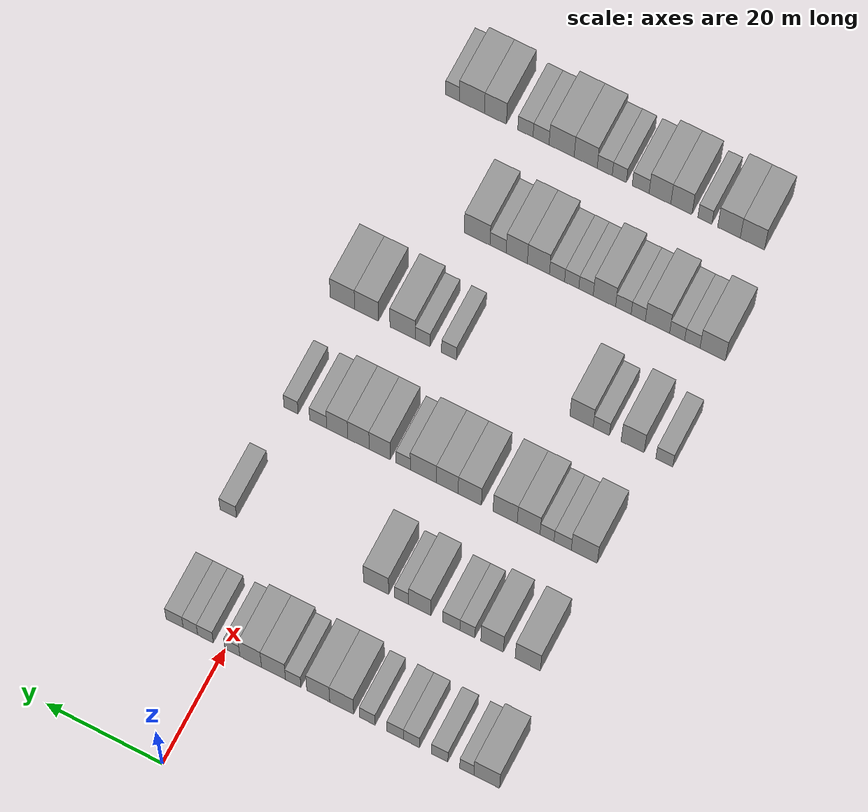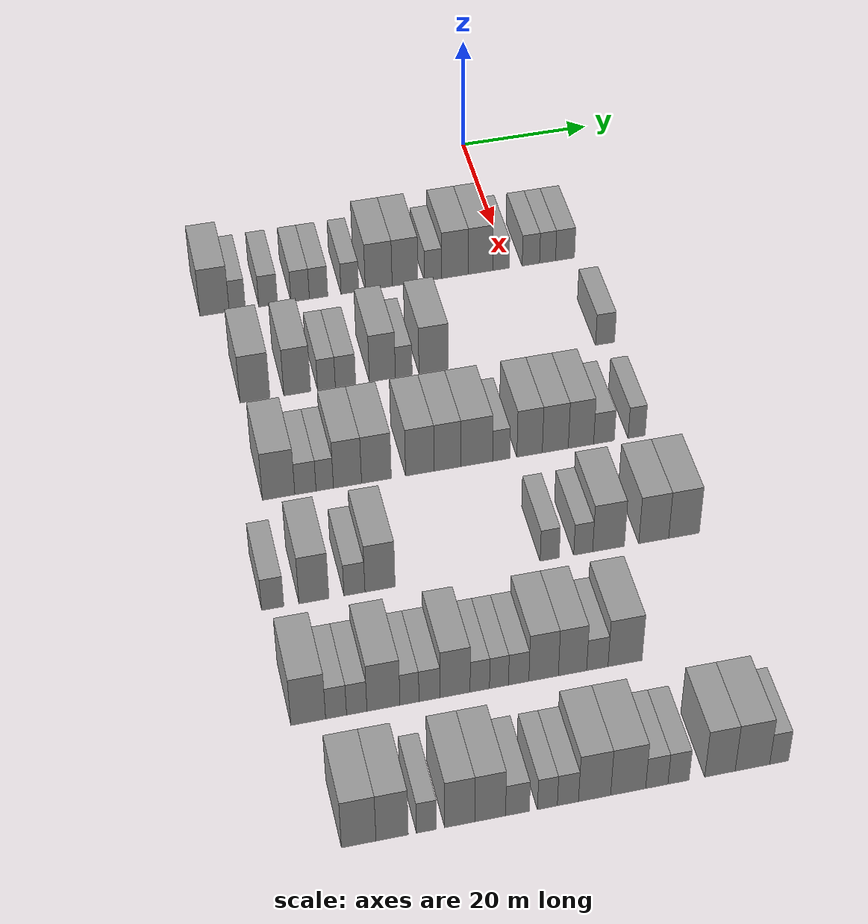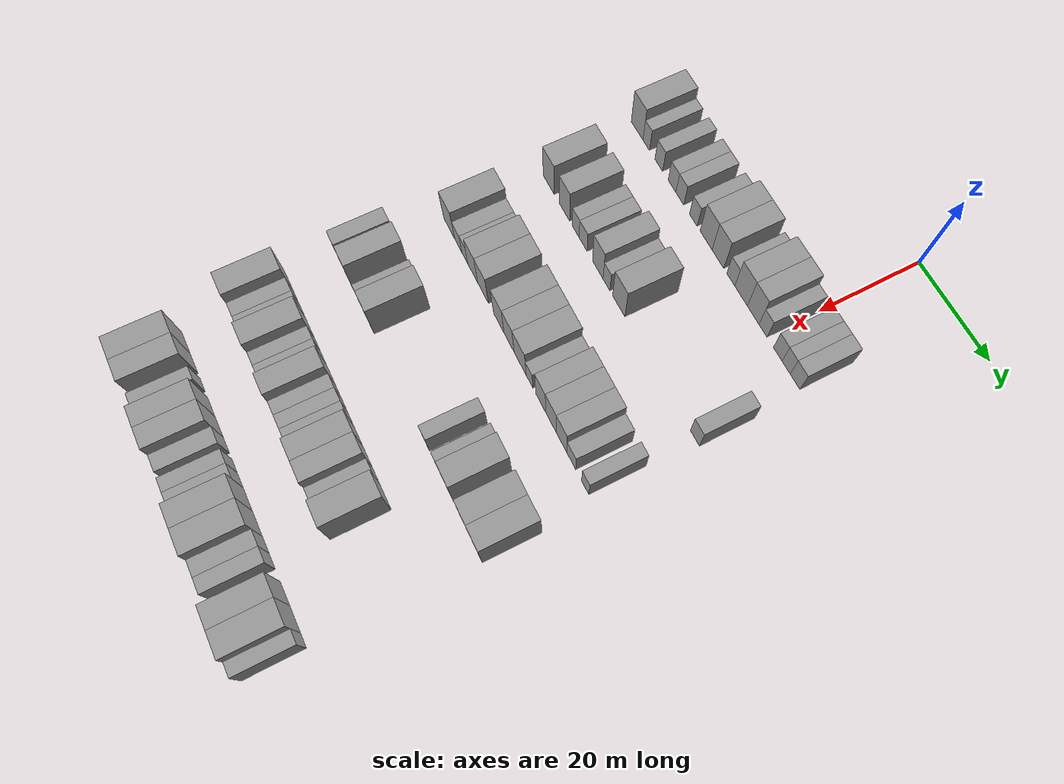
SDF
<sdf version="1.6">
 <world name="default">
  <model name="building_75">
   <static>1</static>
   <pose>25.0000 -44.4682 0 0.000000 0.000000 0.000000</pose>
   <link name="link">
    <pose>0 0 4.50 0 0 0</pose>
    <collision name="collision"><geometry><box><size>10.0000 4.3394 9.0000</size></box></geometry></collision>
    <visual name="visual">
     <cast_shadows>0</cast_shadows>
     <geometry><box><size>10.0000 4.3394 9.0000</size></box></geometry>
     <material>
      <script>
       <uri>model://grey_wall/materials/scripts</uri>
       <uri>model://grey_wall/materials/textures</uri>
       <name>vrc/grey_wall</name>
      </script>
     </material>
    </visual>
   </link>
  </model>
  <model name="building_76">
   <static>1</static>
   <pose>25.0000 -41.0983 0 0.000000 0.000000 0.000000</pose>
   <link name="link">
    <pose>0 0 3.00 0 0 0</pose>
    <collision name="collision"><geometry><box><size>10.0000 2.4003 6.0000</size></box></geometry></collision>
    <visual name="visual">
     <cast_shadows>0</cast_shadows>
     <geometry><box><size>10.0000 2.4003 6.0000</size></box></geometry>
     <material>
      <script>
       <uri>model://grey_wall/materials/scripts</uri>
       <uri>model://grey_wall/materials/textures</uri>
       <name>vrc/grey_wall</name>
      </script>
     </material>
    </visual>
   </link>
  </model>
  <model name="building_77">
   <static>1</static>
   <pose>25.0000 -36.5025 0 0.000000 0.000000 0.000000</pose>
   <link name="link">
    <pose>0 0 3.00 0 0 0</pose>
    <collision name="collision"><geometry><box><size>10.0000 2.7914 6.0000</size></box></geometry></collision>
    <visual name="visual">
     <cast_shadows>0</cast_shadows>
     <geometry><box><size>10.0000 2.7914 6.0000</size></box></geometry>
     <material>
      <script>
       <uri>model://grey_wall/materials/scripts</uri>
       <uri>model://grey_wall/materials/textures</uri>
       <name>vrc/grey_wall</name>
      </script>
     </material>
    </visual>
   </link>
  </model>
  <model name="building_78">
   <static>1</static>
   <pose>25.0000 -31.7241 0 0.000000 0.000000 0.000000</pose>
   <link name="link">
    <pose>0 0 3.00 0 0 0</pose>
    <collision name="collision"><geometry><box><size>10.0000 2.7655 6.0000</size></box></geometry></collision>
    <visual name="visual">
     <cast_shadows>0</cast_shadows>
     <geometry><box><size>10.0000 2.7655 6.0000</size></box></geometry>
     <material>
      <script>
       <uri>model://grey_wall/materials/scripts</uri>
       <uri>model://grey_wall/materials/textures</uri>
       <name>vrc/grey_wall</name>
      </script>
     </material>
    </visual>
   </link>
  </model>
  <model name="building_79">
   <static>1</static>
   <pose>25.0000 -28.9590 0 0.000000 0.000000 0.000000</pose>
   <link name="link">
    <pose>0 0 3.00 0 0 0</pose>
    <collision name="collision"><geometry><box><size>10.0000 2.7646 6.0000</size></box></geometry></collision>
    <visual name="visual">
     <cast_shadows>0</cast_shadows>
     <geometry><box><size>10.0000 2.7646 6.0000</size></box></geometry>
     <material>
      <script>
       <uri>model://grey_wall/materials/scripts</uri>
       <uri>model://grey_wall/materials/textures</uri>
       <name>vrc/grey_wall</name>
      </script>
     </material>
    </visual>
   </link>
  </model>
  <model name="building_80">
   <static>1</static>
   <pose>25.0000 -24.2439 0 0.000000 0.000000 0.000000</pose>
   <link name="link">
    <pose>0 0 3.00 0 0 0</pose>
    <collision name="collision"><geometry><box><size>10.0000 2.6656 6.0000</size></box></geometry></collision>
    <visual name="visual">
     <cast_shadows>0</cast_shadows>
     <geometry><box><size>10.0000 2.6656 6.0000</size></box></geometry>
     <material>
      <script>
       <uri>model://grey_wall/materials/scripts</uri>
       <uri>model://grey_wall/materials/textures</uri>
       <name>vrc/grey_wall</name>
      </script>
     </material>
    </visual>
   </link>
  </model>
  <model name="building_81">
   <static>1</static>
   <pose>25.0000 -19.8770 0 0.000000 0.000000 0.000000</pose>
   <link name="link">
    <pose>0 0 4.50 0 0 0</pose>
    <collision name="collision"><geometry><box><size>10.0000 4.0682 9.0000</size></box></geometry></collision>
    <visual name="visual">
     <cast_shadows>0</cast_shadows>
     <geometry><box><size>10.0000 4.0682 9.0000</size></box></geometry>
     <material>
      <script>
       <uri>model://grey_wall/materials/scripts</uri>
       <uri>model://grey_wall/materials/textures</uri>
       <name>vrc/grey_wall</name>
      </script>
     </material>
    </visual>
   </link>
  </model>
  <model name="building_82">
   <static>1</static>
   <pose>25.0000 -15.8844 0 0.000000 0.000000 0.000000</pose>
   <link name="link">
    <pose>0 0 4.50 0 0 0</pose>
    <collision name="collision"><geometry><box><size>10.0000 3.9169 9.0000</size></box></geometry></collision>
    <visual name="visual">
     <cast_shadows>0</cast_shadows>
     <geometry><box><size>10.0000 3.9169 9.0000</size></box></geometry>
     <material>
      <script>
       <uri>model://grey_wall/materials/scripts</uri>
       <uri>model://grey_wall/materials/textures</uri>
       <name>vrc/grey_wall</name>
      </script>
     </material>
    </visual>
   </link>
  </model>
  <model name="building_83">
   <static>1</static>
   <pose>25.0000 -11.6111 0 0.000000 0.000000 0.000000</pose>
   <link name="link">
    <pose>0 0 3.00 0 0 0</pose>
    <collision name="collision"><geometry><box><size>10.0000 2.6296 6.0000</size></box></geometry></collision>
    <visual name="visual">
     <cast_shadows>0</cast_shadows>
     <geometry><box><size>10.0000 2.6296 6.0000</size></box></geometry>
     <material>
      <script>
       <uri>model://grey_wall/materials/scripts</uri>
       <uri>model://grey_wall/materials/textures</uri>
       <name>vrc/grey_wall</name>
      </script>
     </material>
    </visual>
   </link>
  </model>
  <model name="building_84">
   <static>1</static>
   <pose>25.0000 -8.2443 0 0.000000 0.000000 0.000000</pose>
   <link name="link">
    <pose>0 0 4.50 0 0 0</pose>
    <collision name="collision"><geometry><box><size>10.0000 4.1041 9.0000</size></box></geometry></collision>
    <visual name="visual">
     <cast_shadows>0</cast_shadows>
     <geometry><box><size>10.0000 4.1041 9.0000</size></box></geometry>
     <material>
      <script>
       <uri>model://grey_wall/materials/scripts</uri>
       <uri>model://grey_wall/materials/textures</uri>
       <name>vrc/grey_wall</name>
      </script>
     </material>
    </visual>
   </link>
  </model>
  <model name="building_85">
   <static>1</static>
   <pose>25.0000 -4.3340 0 0.000000 0.000000 0.000000</pose>
   <link name="link">
    <pose>0 0 4.50 0 0 0</pose>
    <collision name="collision"><geometry><box><size>10.0000 3.7165 9.0000</size></box></geometry></collision>
    <visual name="visual">
     <cast_shadows>0</cast_shadows>
     <geometry><box><size>10.0000 3.7165 9.0000</size></box></geometry>
     <material>
      <script>
       <uri>model://grey_wall/materials/scripts</uri>
       <uri>model://grey_wall/materials/textures</uri>
       <name>vrc/grey_wall</name>
      </script>
     </material>
    </visual>
   </link>
  </model>
  <model name="building_86">
   <static>1</static>
   <pose>25.0000 -1.1992 0 0.000000 0.000000 0.000000</pose>
   <link name="link">
    <pose>0 0 3.00 0 0 0</pose>
    <collision name="collision"><geometry><box><size>10.0000 2.5531 6.0000</size></box></geometry></collision>
    <visual name="visual">
     <cast_shadows>0</cast_shadows>
     <geometry><box><size>10.0000 2.5531 6.0000</size></box></geometry>
     <material>
      <script>
       <uri>model://grey_wall/materials/scripts</uri>
       <uri>model://grey_wall/materials/textures</uri>
       <name>vrc/grey_wall</name>
      </script>
     </material>
    </visual>
   </link>
  </model>
  <model name="building_87">
   <static>1</static>
   <pose>25.0000 3.4221 0 0.000000 0.000000 0.000000</pose>
   <link name="link">
    <pose>0 0 3.00 0 0 0</pose>
    <collision name="collision"><geometry><box><size>10.0000 2.6894 6.0000</size></box></geometry></collision>
    <visual name="visual">
     <cast_shadows>0</cast_shadows>
     <geometry><box><size>10.0000 2.6894 6.0000</size></box></geometry>
     <material>
      <script>
       <uri>model://grey_wall/materials/scripts</uri>
       <uri>model://grey_wall/materials/textures</uri>
       <name>vrc/grey_wall</name>
      </script>
     </material>
    </visual>
   </link>
  </model>
  <model name="building_88">
   <static>1</static>
   <pose>25.0000 6.0088 0 0.000000 0.000000 0.000000</pose>
   <link name="link">
    <pose>0 0 3.00 0 0 0</pose>
    <collision name="collision"><geometry><box><size>10.0000 2.4841 6.0000</size></box></geometry></collision>
    <visual name="visual">
     <cast_shadows>0</cast_shadows>
     <geometry><box><size>10.0000 2.4841 6.0000</size></box></geometry>
     <material>
      <script>
       <uri>model://grey_wall/materials/scripts</uri>
       <uri>model://grey_wall/materials/textures</uri>
       <name>vrc/grey_wall</name>
      </script>
     </material>
    </visual>
   </link>
  </model>
  <model name="building_89">
   <static>1</static>
   <pose>25.0000 8.7211 0 0.000000 0.000000 0.000000</pose>
   <link name="link">
    <pose>0 0 3.00 0 0 0</pose>
    <collision name="collision"><geometry><box><size>10.0000 2.9404 6.0000</size></box></geometry></collision>
    <visual name="visual">
     <cast_shadows>0</cast_shadows>
     <geometry><box><size>10.0000 2.9404 6.0000</size></box></geometry>
     <material>
      <script>
       <uri>model://grey_wall/materials/scripts</uri>
       <uri>model://grey_wall/materials/textures</uri>
       <name>vrc/grey_wall</name>
      </script>
     </material>
    </visual>
   </link>
  </model>
  <model name="building_248">
   <static>1</static>
   <pose>44.0000 -41.6367 0 0.000000 0.000000 0.000000</pose>
   <link name="link">
    <pose>0 0 4.50 0 0 0</pose>
    <collision name="collision"><geometry><box><size>10.0000 4.2806 9.0000</size></box></geometry></collision>
    <visual name="visual">
     <cast_shadows>0</cast_shadows>
     <geometry><box><size>10.0000 4.2806 9.0000</size></box></geometry>
     <material>
      <script>
       <uri>model://grey_wall/materials/scripts</uri>
       <uri>model://grey_wall/materials/textures</uri>
       <name>vrc/grey_wall</name>
      </script>
     </material>
    </visual>
   </link>
  </model>
  <model name="building_249">
   <static>1</static>
   <pose>44.0000 -35.5731 0 0.000000 0.000000 0.000000</pose>
   <link name="link">
    <pose>0 0 4.50 0 0 0</pose>
    <collision name="collision"><geometry><box><size>10.0000 3.8466 9.0000</size></box></geometry></collision>
    <visual name="visual">
     <cast_shadows>0</cast_shadows>
     <geometry><box><size>10.0000 3.8466 9.0000</size></box></geometry>
     <material>
      <script>
       <uri>model://grey_wall/materials/scripts</uri>
       <uri>model://grey_wall/materials/textures</uri>
       <name>vrc/grey_wall</name>
      </script>
     </material>
    </visual>
   </link>
  </model>
  <model name="building_250">
   <static>1</static>
   <pose>44.0000 -31.3659 0 0.000000 0.000000 0.000000</pose>
   <link name="link">
    <pose>0 0 3.00 0 0 0</pose>
    <collision name="collision"><geometry><box><size>10.0000 2.5678 6.0000</size></box></geometry></collision>
    <visual name="visual">
     <cast_shadows>0</cast_shadows>
     <geometry><box><size>10.0000 2.5678 6.0000</size></box></geometry>
     <material>
      <script>
       <uri>model://grey_wall/materials/scripts</uri>
       <uri>model://grey_wall/materials/textures</uri>
       <name>vrc/grey_wall</name>
      </script>
     </material>
    </visual>
   </link>
  </model>
  <model name="building_251">
   <static>1</static>
   <pose>44.0000 -28.6112 0 0.000000 0.000000 0.000000</pose>
   <link name="link">
    <pose>0 0 3.00 0 0 0</pose>
    <collision name="collision"><geometry><box><size>10.0000 2.9415 6.0000</size></box></geometry></collision>
    <visual name="visual">
     <cast_shadows>0</cast_shadows>
     <geometry><box><size>10.0000 2.9415 6.0000</size></box></geometry>
     <material>
      <script>
       <uri>model://grey_wall/materials/scripts</uri>
       <uri>model://grey_wall/materials/textures</uri>
       <name>vrc/grey_wall</name>
      </script>
     </material>
    </visual>
   </link>
  </model>
  <model name="building_252">
   <static>1</static>
   <pose>44.0000 -23.2487 0 0.000000 0.000000 0.000000</pose>
   <link name="link">
    <pose>0 0 4.50 0 0 0</pose>
    <collision name="collision"><geometry><box><size>10.0000 3.7835 9.0000</size></box></geometry></collision>
    <visual name="visual">
     <cast_shadows>0</cast_shadows>
     <geometry><box><size>10.0000 3.7835 9.0000</size></box></geometry>
     <material>
      <script>
       <uri>model://grey_wall/materials/scripts</uri>
       <uri>model://grey_wall/materials/textures</uri>
       <name>vrc/grey_wall</name>
      </script>
     </material>
    </visual>
   </link>
  </model>
  <model name="building_253">
   <static>1</static>
   <pose>44.0000 -20.1363 0 0.000000 0.000000 0.000000</pose>
   <link name="link">
    <pose>0 0 3.00 0 0 0</pose>
    <collision name="collision"><geometry><box><size>10.0000 2.4414 6.0000</size></box></geometry></collision>
    <visual name="visual">
     <cast_shadows>0</cast_shadows>
     <geometry><box><size>10.0000 2.4414 6.0000</size></box></geometry>
     <material>
      <script>
       <uri>model://grey_wall/materials/scripts</uri>
       <uri>model://grey_wall/materials/textures</uri>
       <name>vrc/grey_wall</name>
      </script>
     </material>
    </visual>
   </link>
  </model>
  <model name="building_254">
   <static>1</static>
   <pose>44.0000 -15.7629 0 0.000000 0.000000 0.000000</pose>
   <link name="link">
    <pose>0 0 4.50 0 0 0</pose>
    <collision name="collision"><geometry><box><size>10.0000 4.3054 9.0000</size></box></geometry></collision>
    <visual name="visual">
     <cast_shadows>0</cast_shadows>
     <geometry><box><size>10.0000 4.3054 9.0000</size></box></geometry>
     <material>
      <script>
       <uri>model://grey_wall/materials/scripts</uri>
       <uri>model://grey_wall/materials/textures</uri>
       <name>vrc/grey_wall</name>
      </script>
     </material>
    </visual>
   </link>
  </model>
  <model name="building_255">
   <static>1</static>
   <pose>44.0000 9.6743 0 0.000000 0.000000 0.000000</pose>
   <link name="link">
    <pose>0 0 3.00 0 0 0</pose>
    <collision name="collision"><geometry><box><size>10.0000 2.8563 6.0000</size></box></geometry></collision>
    <visual name="visual">
     <cast_shadows>0</cast_shadows>
     <geometry><box><size>10.0000 2.8563 6.0000</size></box></geometry>
     <material>
      <script>
       <uri>model://grey_wall/materials/scripts</uri>
       <uri>model://grey_wall/materials/textures</uri>
       <name>vrc/grey_wall</name>
      </script>
     </material>
    </visual>
   </link>
  </model>
  <model name="building_418">
   <static>1</static>
   <pose>63.0000 -41.5515 0 0.000000 0.000000 0.000000</pose>
   <link name="link">
    <pose>0 0 4.50 0 0 0</pose>
    <collision name="collision"><geometry><box><size>10.0000 4.4552 9.0000</size></box></geometry></collision>
    <visual name="visual">
     <cast_shadows>0</cast_shadows>
     <geometry><box><size>10.0000 4.4552 9.0000</size></box></geometry>
     <material>
      <script>
       <uri>model://grey_wall/materials/scripts</uri>
       <uri>model://grey_wall/materials/textures</uri>
       <name>vrc/grey_wall</name>
      </script>
     </material>
    </visual>
   </link>
  </model>
  <model name="building_419">
   <static>1</static>
   <pose>63.0000 -37.8592 0 0.000000 0.000000 0.000000</pose>
   <link name="link">
    <pose>0 0 3.00 0 0 0</pose>
    <collision name="collision"><geometry><box><size>10.0000 2.9294 6.0000</size></box></geometry></collision>
    <visual name="visual">
     <cast_shadows>0</cast_shadows>
     <geometry><box><size>10.0000 2.9294 6.0000</size></box></geometry>
     <material>
      <script>
       <uri>model://grey_wall/materials/scripts</uri>
       <uri>model://grey_wall/materials/textures</uri>
       <name>vrc/grey_wall</name>
      </script>
     </material>
    </visual>
   </link>
  </model>
  <model name="building_420">
   <static>1</static>
   <pose>63.0000 -35.1920 0 0.000000 0.000000 0.000000</pose>
   <link name="link">
    <pose>0 0 3.00 0 0 0</pose>
    <collision name="collision"><geometry><box><size>10.0000 2.4049 6.0000</size></box></geometry></collision>
    <visual name="visual">
     <cast_shadows>0</cast_shadows>
     <geometry><box><size>10.0000 2.4049 6.0000</size></box></geometry>
     <material>
      <script>
       <uri>model://grey_wall/materials/scripts</uri>
       <uri>model://grey_wall/materials/textures</uri>
       <name>vrc/grey_wall</name>
      </script>
     </material>
    </visual>
   </link>
  </model>
  <model name="building_421">
   <static>1</static>
   <pose>63.0000 -32.0356 0 0.000000 0.000000 0.000000</pose>
   <link name="link">
    <pose>0 0 4.50 0 0 0</pose>
    <collision name="collision"><geometry><box><size>10.0000 3.9080 9.0000</size></box></geometry></collision>
    <visual name="visual">
     <cast_shadows>0</cast_shadows>
     <geometry><box><size>10.0000 3.9080 9.0000</size></box></geometry>
     <material>
      <script>
       <uri>model://grey_wall/materials/scripts</uri>
       <uri>model://grey_wall/materials/textures</uri>
       <name>vrc/grey_wall</name>
      </script>
     </material>
    </visual>
   </link>
  </model>
  <model name="building_422">
   <static>1</static>
   <pose>63.0000 -28.0102 0 0.000000 0.000000 0.000000</pose>
   <link name="link">
    <pose>0 0 4.50 0 0 0</pose>
    <collision name="collision"><geometry><box><size>10.0000 4.1428 9.0000</size></box></geometry></collision>
    <visual name="visual">
     <cast_shadows>0</cast_shadows>
     <geometry><box><size>10.0000 4.1428 9.0000</size></box></geometry>
     <material>
      <script>
       <uri>model://grey_wall/materials/scripts</uri>
       <uri>model://grey_wall/materials/textures</uri>
       <name>vrc/grey_wall</name>
      </script>
     </material>
    </visual>
   </link>
  </model>
  <model name="building_423">
   <static>1</static>
   <pose>63.0000 -21.9392 0 0.000000 0.000000 0.000000</pose>
   <link name="link">
    <pose>0 0 4.50 0 0 0</pose>
    <collision name="collision"><geometry><box><size>10.0000 3.9992 9.0000</size></box></geometry></collision>
    <visual name="visual">
     <cast_shadows>0</cast_shadows>
     <geometry><box><size>10.0000 3.9992 9.0000</size></box></geometry>
     <material>
      <script>
       <uri>model://grey_wall/materials/scripts</uri>
       <uri>model://grey_wall/materials/textures</uri>
       <name>vrc/grey_wall</name>
      </script>
     </material>
    </visual>
   </link>
  </model>
  <model name="building_424">
   <static>1</static>
   <pose>63.0000 -18.0505 0 0.000000 0.000000 0.000000</pose>
   <link name="link">
    <pose>0 0 4.50 0 0 0</pose>
    <collision name="collision"><geometry><box><size>10.0000 3.7780 9.0000</size></box></geometry></collision>
    <visual name="visual">
     <cast_shadows>0</cast_shadows>
     <geometry><box><size>10.0000 3.7780 9.0000</size></box></geometry>
     <material>
      <script>
       <uri>model://grey_wall/materials/scripts</uri>
       <uri>model://grey_wall/materials/textures</uri>
       <name>vrc/grey_wall</name>
      </script>
     </material>
    </visual>
   </link>
  </model>
  <model name="building_425">
   <static>1</static>
   <pose>63.0000 -13.9244 0 0.000000 0.000000 0.000000</pose>
   <link name="link">
    <pose>0 0 4.50 0 0 0</pose>
    <collision name="collision"><geometry><box><size>10.0000 4.4743 9.0000</size></box></geometry></collision>
    <visual name="visual">
     <cast_shadows>0</cast_shadows>
     <geometry><box><size>10.0000 4.4743 9.0000</size></box></geometry>
     <material>
      <script>
       <uri>model://grey_wall/materials/scripts</uri>
       <uri>model://grey_wall/materials/textures</uri>
       <name>vrc/grey_wall</name>
      </script>
     </material>
    </visual>
   </link>
  </model>
  <model name="building_426">
   <static>1</static>
   <pose>63.0000 -10.4637 0 0.000000 0.000000 0.000000</pose>
   <link name="link">
    <pose>0 0 3.00 0 0 0</pose>
    <collision name="collision"><geometry><box><size>10.0000 2.4470 6.0000</size></box></geometry></collision>
    <visual name="visual">
     <cast_shadows>0</cast_shadows>
     <geometry><box><size>10.0000 2.4470 6.0000</size></box></geometry>
     <material>
      <script>
       <uri>model://grey_wall/materials/scripts</uri>
       <uri>model://grey_wall/materials/textures</uri>
       <name>vrc/grey_wall</name>
      </script>
     </material>
    </visual>
   </link>
  </model>
  <model name="building_427">
   <static>1</static>
   <pose>63.0000 -6.4299 0 0.000000 0.000000 0.000000</pose>
   <link name="link">
    <pose>0 0 4.50 0 0 0</pose>
    <collision name="collision"><geometry><box><size>10.0000 3.6206 9.0000</size></box></geometry></collision>
    <visual name="visual">
     <cast_shadows>0</cast_shadows>
     <geometry><box><size>10.0000 3.6206 9.0000</size></box></geometry>
     <material>
      <script>
       <uri>model://grey_wall/materials/scripts</uri>
       <uri>model://grey_wall/materials/textures</uri>
       <name>vrc/grey_wall</name>
      </script>
     </material>
    </visual>
   </link>
  </model>
  <model name="building_428">
   <static>1</static>
   <pose>63.0000 -2.7612 0 0.000000 0.000000 0.000000</pose>
   <link name="link">
    <pose>0 0 4.50 0 0 0</pose>
    <collision name="collision"><geometry><box><size>10.0000 3.7168 9.0000</size></box></geometry></collision>
    <visual name="visual">
     <cast_shadows>0</cast_shadows>
     <geometry><box><size>10.0000 3.7168 9.0000</size></box></geometry>
     <material>
      <script>
       <uri>model://grey_wall/materials/scripts</uri>
       <uri>model://grey_wall/materials/textures</uri>
       <name>vrc/grey_wall</name>
      </script>
     </material>
    </visual>
   </link>
  </model>
  <model name="building_429">
   <static>1</static>
   <pose>63.0000 0.9177 0 0.000000 0.000000 0.000000</pose>
   <link name="link">
    <pose>0 0 4.50 0 0 0</pose>
    <collision name="collision"><geometry><box><size>10.0000 3.6410 9.0000</size></box></geometry></collision>
    <visual name="visual">
     <cast_shadows>0</cast_shadows>
     <geometry><box><size>10.0000 3.6410 9.0000</size></box></geometry>
     <material>
      <script>
       <uri>model://grey_wall/materials/scripts</uri>
       <uri>model://grey_wall/materials/textures</uri>
       <name>vrc/grey_wall</name>
      </script>
     </material>
    </visual>
   </link>
  </model>
  <model name="building_430">
   <static>1</static>
   <pose>63.0000 4.2230 0 0.000000 0.000000 0.000000</pose>
   <link name="link">
    <pose>0 0 3.00 0 0 0</pose>
    <collision name="collision"><geometry><box><size>10.0000 2.9698 6.0000</size></box></geometry></collision>
    <visual name="visual">
     <cast_shadows>0</cast_shadows>
     <geometry><box><size>10.0000 2.9698 6.0000</size></box></geometry>
     <material>
      <script>
       <uri>model://grey_wall/materials/scripts</uri>
       <uri>model://grey_wall/materials/textures</uri>
       <name>vrc/grey_wall</name>
      </script>
     </material>
    </visual>
   </link>
  </model>
  <model name="building_431">
   <static>1</static>
   <pose>63.0000 8.9356 0 0.000000 0.000000 0.000000</pose>
   <link name="link">
    <pose>0 0 3.00 0 0 0</pose>
    <collision name="collision"><geometry><box><size>10.0000 2.4553 6.0000</size></box></geometry></collision>
    <visual name="visual">
     <cast_shadows>0</cast_shadows>
     <geometry><box><size>10.0000 2.4553 6.0000</size></box></geometry>
     <material>
      <script>
       <uri>model://grey_wall/materials/scripts</uri>
       <uri>model://grey_wall/materials/textures</uri>
       <name>vrc/grey_wall</name>
      </script>
     </material>
    </visual>
   </link>
  </model>
  <model name="building_598">
   <static>1</static>
   <pose>82.0000 -45.6412 0 0.000000 0.000000 0.000000</pose>
   <link name="link">
    <pose>0 0 3.00 0 0 0</pose>
    <collision name="collision"><geometry><box><size>10.0000 2.9199 6.0000</size></box></geometry></collision>
    <visual name="visual">
     <cast_shadows>0</cast_shadows>
     <geometry><box><size>10.0000 2.9199 6.0000</size></box></geometry>
     <material>
      <script>
       <uri>model://grey_wall/materials/scripts</uri>
       <uri>model://grey_wall/materials/textures</uri>
       <name>vrc/grey_wall</name>
      </script>
     </material>
    </visual>
   </link>
  </model>
  <model name="building_599">
   <static>1</static>
   <pose>82.0000 -40.2009 0 0.000000 0.000000 0.000000</pose>
   <link name="link">
    <pose>0 0 4.50 0 0 0</pose>
    <collision name="collision"><geometry><box><size>10.0000 3.9608 9.0000</size></box></geometry></collision>
    <visual name="visual">
     <cast_shadows>0</cast_shadows>
     <geometry><box><size>10.0000 3.9608 9.0000</size></box></geometry>
     <material>
      <script>
       <uri>model://grey_wall/materials/scripts</uri>
       <uri>model://grey_wall/materials/textures</uri>
       <name>vrc/grey_wall</name>
      </script>
     </material>
    </visual>
   </link>
  </model>
  <model name="building_600">
   <static>1</static>
   <pose>82.0000 -34.8259 0 0.000000 0.000000 0.000000</pose>
   <link name="link">
    <pose>0 0 3.00 0 0 0</pose>
    <collision name="collision"><geometry><box><size>10.0000 2.7892 6.0000</size></box></geometry></collision>
    <visual name="visual">
     <cast_shadows>0</cast_shadows>
     <geometry><box><size>10.0000 2.7892 6.0000</size></box></geometry>
     <material>
      <script>
       <uri>model://grey_wall/materials/scripts</uri>
       <uri>model://grey_wall/materials/textures</uri>
       <name>vrc/grey_wall</name>
      </script>
     </material>
    </visual>
   </link>
  </model>
  <model name="building_601">
   <static>1</static>
   <pose>82.0000 -31.4218 0 0.000000 0.000000 0.000000</pose>
   <link name="link">
    <pose>0 0 4.50 0 0 0</pose>
    <collision name="collision"><geometry><box><size>10.0000 4.0190 9.0000</size></box></geometry></collision>
    <visual name="visual">
     <cast_shadows>0</cast_shadows>
     <geometry><box><size>10.0000 4.0190 9.0000</size></box></geometry>
     <material>
      <script>
       <uri>model://grey_wall/materials/scripts</uri>
       <uri>model://grey_wall/materials/textures</uri>
       <name>vrc/grey_wall</name>
      </script>
     </material>
    </visual>
   </link>
  </model>
  <model name="building_602">
   <static>1</static>
   <pose>82.0000 -8.5173 0 0.000000 0.000000 0.000000</pose>
   <link name="link">
    <pose>0 0 3.00 0 0 0</pose>
    <collision name="collision"><geometry><box><size>10.0000 2.5966 6.0000</size></box></geometry></collision>
    <visual name="visual">
     <cast_shadows>0</cast_shadows>
     <geometry><box><size>10.0000 2.5966 6.0000</size></box></geometry>
     <material>
      <script>
       <uri>model://grey_wall/materials/scripts</uri>
       <uri>model://grey_wall/materials/textures</uri>
       <name>vrc/grey_wall</name>
      </script>
     </material>
    </visual>
   </link>
  </model>
  <model name="building_603">
   <static>1</static>
   <pose>82.0000 -3.9219 0 0.000000 0.000000 0.000000</pose>
   <link name="link">
    <pose>0 0 3.00 0 0 0</pose>
    <collision name="collision"><geometry><box><size>10.0000 2.5942 6.0000</size></box></geometry></collision>
    <visual name="visual">
     <cast_shadows>0</cast_shadows>
     <geometry><box><size>10.0000 2.5942 6.0000</size></box></geometry>
     <material>
      <script>
       <uri>model://grey_wall/materials/scripts</uri>
       <uri>model://grey_wall/materials/textures</uri>
       <name>vrc/grey_wall</name>
      </script>
     </material>
    </visual>
   </link>
  </model>
  <model name="building_604">
   <static>1</static>
   <pose>82.0000 -0.4354 0 0.000000 0.000000 0.000000</pose>
   <link name="link">
    <pose>0 0 4.50 0 0 0</pose>
    <collision name="collision"><geometry><box><size>10.0000 4.3788 9.0000</size></box></geometry></collision>
    <visual name="visual">
     <cast_shadows>0</cast_shadows>
     <geometry><box><size>10.0000 4.3788 9.0000</size></box></geometry>
     <material>
      <script>
       <uri>model://grey_wall/materials/scripts</uri>
       <uri>model://grey_wall/materials/textures</uri>
       <name>vrc/grey_wall</name>
      </script>
     </material>
    </visual>
   </link>
  </model>
  <model name="building_605">
   <static>1</static>
   <pose>82.0000 5.8231 0 0.000000 0.000000 0.000000</pose>
   <link name="link">
    <pose>0 0 4.50 0 0 0</pose>
    <collision name="collision"><geometry><box><size>10.0000 4.1381 9.0000</size></box></geometry></collision>
    <visual name="visual">
     <cast_shadows>0</cast_shadows>
     <geometry><box><size>10.0000 4.1381 9.0000</size></box></geometry>
     <material>
      <script>
       <uri>model://grey_wall/materials/scripts</uri>
       <uri>model://grey_wall/materials/textures</uri>
       <name>vrc/grey_wall</name>
      </script>
     </material>
    </visual>
   </link>
  </model>
  <model name="building_606">
   <static>1</static>
   <pose>82.0000 10.0282 0 0.000000 0.000000 0.000000</pose>
   <link name="link">
    <pose>0 0 4.50 0 0 0</pose>
    <collision name="collision"><geometry><box><size>10.0000 4.2722 9.0000</size></box></geometry></collision>
    <visual name="visual">
     <cast_shadows>0</cast_shadows>
     <geometry><box><size>10.0000 4.2722 9.0000</size></box></geometry>
     <material>
      <script>
       <uri>model://grey_wall/materials/scripts</uri>
       <uri>model://grey_wall/materials/textures</uri>
       <name>vrc/grey_wall</name>
      </script>
     </material>
    </visual>
   </link>
  </model>
  <model name="building_769">
   <static>1</static>
   <pose>101.0000 -44.4375 0 0.000000 0.000000 0.000000</pose>
   <link name="link">
    <pose>0 0 4.50 0 0 0</pose>
    <collision name="collision"><geometry><box><size>10.0000 4.3813 9.0000</size></box></geometry></collision>
    <visual name="visual">
     <cast_shadows>0</cast_shadows>
     <geometry><box><size>10.0000 4.3813 9.0000</size></box></geometry>
     <material>
      <script>
       <uri>model://grey_wall/materials/scripts</uri>
       <uri>model://grey_wall/materials/textures</uri>
       <name>vrc/grey_wall</name>
      </script>
     </material>
    </visual>
   </link>
  </model>
  <model name="building_770">
   <static>1</static>
   <pose>101.0000 -40.9219 0 0.000000 0.000000 0.000000</pose>
   <link name="link">
    <pose>0 0 3.00 0 0 0</pose>
    <collision name="collision"><geometry><box><size>10.0000 2.6497 6.0000</size></box></geometry></collision>
    <visual name="visual">
     <cast_shadows>0</cast_shadows>
     <geometry><box><size>10.0000 2.6497 6.0000</size></box></geometry>
     <material>
      <script>
       <uri>model://grey_wall/materials/scripts</uri>
       <uri>model://grey_wall/materials/textures</uri>
       <name>vrc/grey_wall</name>
      </script>
     </material>
    </visual>
   </link>
  </model>
  <model name="building_771">
   <static>1</static>
   <pose>101.0000 -38.3006 0 0.000000 0.000000 0.000000</pose>
   <link name="link">
    <pose>0 0 3.00 0 0 0</pose>
    <collision name="collision"><geometry><box><size>10.0000 2.5930 6.0000</size></box></geometry></collision>
    <visual name="visual">
     <cast_shadows>0</cast_shadows>
     <geometry><box><size>10.0000 2.5930 6.0000</size></box></geometry>
     <material>
      <script>
       <uri>model://grey_wall/materials/scripts</uri>
       <uri>model://grey_wall/materials/textures</uri>
       <name>vrc/grey_wall</name>
      </script>
     </material>
    </visual>
   </link>
  </model>
  <model name="building_772">
   <static>1</static>
   <pose>101.0000 -34.8980 0 0.000000 0.000000 0.000000</pose>
   <link name="link">
    <pose>0 0 4.50 0 0 0</pose>
    <collision name="collision"><geometry><box><size>10.0000 4.2121 9.0000</size></box></geometry></collision>
    <visual name="visual">
     <cast_shadows>0</cast_shadows>
     <geometry><box><size>10.0000 4.2121 9.0000</size></box></geometry>
     <material>
      <script>
       <uri>model://grey_wall/materials/scripts</uri>
       <uri>model://grey_wall/materials/textures</uri>
       <name>vrc/grey_wall</name>
      </script>
     </material>
    </visual>
   </link>
  </model>
  <model name="building_773">
   <static>1</static>
   <pose>101.0000 -31.5750 0 0.000000 0.000000 0.000000</pose>
   <link name="link">
    <pose>0 0 3.00 0 0 0</pose>
    <collision name="collision"><geometry><box><size>10.0000 2.4340 6.0000</size></box></geometry></collision>
    <visual name="visual">
     <cast_shadows>0</cast_shadows>
     <geometry><box><size>10.0000 2.4340 6.0000</size></box></geometry>
     <material>
      <script>
       <uri>model://grey_wall/materials/scripts</uri>
       <uri>model://grey_wall/materials/textures</uri>
       <name>vrc/grey_wall</name>
      </script>
     </material>
    </visual>
   </link>
  </model>
  <model name="building_774">
   <static>1</static>
   <pose>101.0000 -29.0079 0 0.000000 0.000000 0.000000</pose>
   <link name="link">
    <pose>0 0 3.00 0 0 0</pose>
    <collision name="collision"><geometry><box><size>10.0000 2.7002 6.0000</size></box></geometry></collision>
    <visual name="visual">
     <cast_shadows>0</cast_shadows>
     <geometry><box><size>10.0000 2.7002 6.0000</size></box></geometry>
     <material>
      <script>
       <uri>model://grey_wall/materials/scripts</uri>
       <uri>model://grey_wall/materials/textures</uri>
       <name>vrc/grey_wall</name>
      </script>
     </material>
    </visual>
   </link>
  </model>
  <model name="building_775">
   <static>1</static>
   <pose>101.0000 -25.7231 0 0.000000 0.000000 0.000000</pose>
   <link name="link">
    <pose>0 0 4.50 0 0 0</pose>
    <collision name="collision"><geometry><box><size>10.0000 3.8694 9.0000</size></box></geometry></collision>
    <visual name="visual">
     <cast_shadows>0</cast_shadows>
     <geometry><box><size>10.0000 3.8694 9.0000</size></box></geometry>
     <material>
      <script>
       <uri>model://grey_wall/materials/scripts</uri>
       <uri>model://grey_wall/materials/textures</uri>
       <name>vrc/grey_wall</name>
      </script>
     </material>
    </visual>
   </link>
  </model>
  <model name="building_776">
   <static>1</static>
   <pose>101.0000 -22.5357 0 0.000000 0.000000 0.000000</pose>
   <link name="link">
    <pose>0 0 3.00 0 0 0</pose>
    <collision name="collision"><geometry><box><size>10.0000 2.5053 6.0000</size></box></geometry></collision>
    <visual name="visual">
     <cast_shadows>0</cast_shadows>
     <geometry><box><size>10.0000 2.5053 6.0000</size></box></geometry>
     <material>
      <script>
       <uri>model://grey_wall/materials/scripts</uri>
       <uri>model://grey_wall/materials/textures</uri>
       <name>vrc/grey_wall</name>
      </script>
     </material>
    </visual>
   </link>
  </model>
  <model name="building_777">
   <static>1</static>
   <pose>101.0000 -20.0496 0 0.000000 0.000000 0.000000</pose>
   <link name="link">
    <pose>0 0 3.00 0 0 0</pose>
    <collision name="collision"><geometry><box><size>10.0000 2.4669 6.0000</size></box></geometry></collision>
    <visual name="visual">
     <cast_shadows>0</cast_shadows>
     <geometry><box><size>10.0000 2.4669 6.0000</size></box></geometry>
     <material>
      <script>
       <uri>model://grey_wall/materials/scripts</uri>
       <uri>model://grey_wall/materials/textures</uri>
       <name>vrc/grey_wall</name>
      </script>
     </material>
    </visual>
   </link>
  </model>
  <model name="building_778">
   <static>1</static>
   <pose>101.0000 -17.4974 0 0.000000 0.000000 0.000000</pose>
   <link name="link">
    <pose>0 0 3.00 0 0 0</pose>
    <collision name="collision"><geometry><box><size>10.0000 2.6374 6.0000</size></box></geometry></collision>
    <visual name="visual">
     <cast_shadows>0</cast_shadows>
     <geometry><box><size>10.0000 2.6374 6.0000</size></box></geometry>
     <material>
      <script>
       <uri>model://grey_wall/materials/scripts</uri>
       <uri>model://grey_wall/materials/textures</uri>
       <name>vrc/grey_wall</name>
      </script>
     </material>
    </visual>
   </link>
  </model>
  <model name="building_779">
   <static>1</static>
   <pose>101.0000 -14.2562 0 0.000000 0.000000 0.000000</pose>
   <link name="link">
    <pose>0 0 4.50 0 0 0</pose>
    <collision name="collision"><geometry><box><size>10.0000 3.8450 9.0000</size></box></geometry></collision>
    <visual name="visual">
     <cast_shadows>0</cast_shadows>
     <geometry><box><size>10.0000 3.8450 9.0000</size></box></geometry>
     <material>
      <script>
       <uri>model://grey_wall/materials/scripts</uri>
       <uri>model://grey_wall/materials/textures</uri>
       <name>vrc/grey_wall</name>
      </script>
     </material>
    </visual>
   </link>
  </model>
  <model name="building_780">
   <static>1</static>
   <pose>101.0000 -10.4831 0 0.000000 0.000000 0.000000</pose>
   <link name="link">
    <pose>0 0 4.50 0 0 0</pose>
    <collision name="collision"><geometry><box><size>10.0000 3.7013 9.0000</size></box></geometry></collision>
    <visual name="visual">
     <cast_shadows>0</cast_shadows>
     <geometry><box><size>10.0000 3.7013 9.0000</size></box></geometry>
     <material>
      <script>
       <uri>model://grey_wall/materials/scripts</uri>
       <uri>model://grey_wall/materials/textures</uri>
       <name>vrc/grey_wall</name>
      </script>
     </material>
    </visual>
   </link>
  </model>
  <model name="building_781">
   <static>1</static>
   <pose>101.0000 -7.2250 0 0.000000 0.000000 0.000000</pose>
   <link name="link">
    <pose>0 0 3.00 0 0 0</pose>
    <collision name="collision"><geometry><box><size>10.0000 2.8148 6.0000</size></box></geometry></collision>
    <visual name="visual">
     <cast_shadows>0</cast_shadows>
     <geometry><box><size>10.0000 2.8148 6.0000</size></box></geometry>
     <material>
      <script>
       <uri>model://grey_wall/materials/scripts</uri>
       <uri>model://grey_wall/materials/textures</uri>
       <name>vrc/grey_wall</name>
      </script>
     </material>
    </visual>
   </link>
  </model>
  <model name="building_782">
   <static>1</static>
   <pose>101.0000 -3.5739 0 0.000000 0.000000 0.000000</pose>
   <link name="link">
    <pose>0 0 4.50 0 0 0</pose>
    <collision name="collision"><geometry><box><size>10.0000 4.4874 9.0000</size></box></geometry></collision>
    <visual name="visual">
     <cast_shadows>0</cast_shadows>
     <geometry><box><size>10.0000 4.4874 9.0000</size></box></geometry>
     <material>
      <script>
       <uri>model://grey_wall/materials/scripts</uri>
       <uri>model://grey_wall/materials/textures</uri>
       <name>vrc/grey_wall</name>
      </script>
     </material>
    </visual>
   </link>
  </model>
  <model name="building_942">
   <static>1</static>
   <pose>120.0000 -41.8340 0 0.000000 0.000000 0.000000</pose>
   <link name="link">
    <pose>0 0 4.50 0 0 0</pose>
    <collision name="collision"><geometry><box><size>10.0000 4.1893 9.0000</size></box></geometry></collision>
    <visual name="visual">
     <cast_shadows>0</cast_shadows>
     <geometry><box><size>10.0000 4.1893 9.0000</size></box></geometry>
     <material>
      <script>
       <uri>model://grey_wall/materials/scripts</uri>
       <uri>model://grey_wall/materials/textures</uri>
       <name>vrc/grey_wall</name>
      </script>
     </material>
    </visual>
   </link>
  </model>
  <model name="building_943">
   <static>1</static>
   <pose>120.0000 -37.7803 0 0.000000 0.000000 0.000000</pose>
   <link name="link">
    <pose>0 0 4.50 0 0 0</pose>
    <collision name="collision"><geometry><box><size>10.0000 3.9181 9.0000</size></box></geometry></collision>
    <visual name="visual">
     <cast_shadows>0</cast_shadows>
     <geometry><box><size>10.0000 3.9181 9.0000</size></box></geometry>
     <material>
      <script>
       <uri>model://grey_wall/materials/scripts</uri>
       <uri>model://grey_wall/materials/textures</uri>
       <name>vrc/grey_wall</name>
      </script>
     </material>
    </visual>
   </link>
  </model>
  <model name="building_944">
   <static>1</static>
   <pose>120.0000 -33.5939 0 0.000000 0.000000 0.000000</pose>
   <link name="link">
    <pose>0 0 3.00 0 0 0</pose>
    <collision name="collision"><geometry><box><size>10.0000 2.4546 6.0000</size></box></geometry></collision>
    <visual name="visual">
     <cast_shadows>0</cast_shadows>
     <geometry><box><size>10.0000 2.4546 6.0000</size></box></geometry>
     <material>
      <script>
       <uri>model://grey_wall/materials/scripts</uri>
       <uri>model://grey_wall/materials/textures</uri>
       <name>vrc/grey_wall</name>
      </script>
     </material>
    </visual>
   </link>
  </model>
  <model name="building_945">
   <static>1</static>
   <pose>120.0000 -29.5195 0 0.000000 0.000000 0.000000</pose>
   <link name="link">
    <pose>0 0 4.50 0 0 0</pose>
    <collision name="collision"><geometry><box><size>10.0000 3.6941 9.0000</size></box></geometry></collision>
    <visual name="visual">
     <cast_shadows>0</cast_shadows>
     <geometry><box><size>10.0000 3.6941 9.0000</size></box></geometry>
     <material>
      <script>
       <uri>model://grey_wall/materials/scripts</uri>
       <uri>model://grey_wall/materials/textures</uri>
       <name>vrc/grey_wall</name>
      </script>
     </material>
    </visual>
   </link>
  </model>
  <model name="building_946">
   <static>1</static>
   <pose>120.0000 -25.7779 0 0.000000 0.000000 0.000000</pose>
   <link name="link">
    <pose>0 0 4.50 0 0 0</pose>
    <collision name="collision"><geometry><box><size>10.0000 3.7890 9.0000</size></box></geometry></collision>
    <visual name="visual">
     <cast_shadows>0</cast_shadows>
     <geometry><box><size>10.0000 3.7890 9.0000</size></box></geometry>
     <material>
      <script>
       <uri>model://grey_wall/materials/scripts</uri>
       <uri>model://grey_wall/materials/textures</uri>
       <name>vrc/grey_wall</name>
      </script>
     </material>
    </visual>
   </link>
  </model>
  <model name="building_947">
   <static>1</static>
   <pose>120.0000 -22.4097 0 0.000000 0.000000 0.000000</pose>
   <link name="link">
    <pose>0 0 3.00 0 0 0</pose>
    <collision name="collision"><geometry><box><size>10.0000 2.9474 6.0000</size></box></geometry></collision>
    <visual name="visual">
     <cast_shadows>0</cast_shadows>
     <geometry><box><size>10.0000 2.9474 6.0000</size></box></geometry>
     <material>
      <script>
       <uri>model://grey_wall/materials/scripts</uri>
       <uri>model://grey_wall/materials/textures</uri>
       <name>vrc/grey_wall</name>
      </script>
     </material>
    </visual>
   </link>
  </model>
  <model name="building_948">
   <static>1</static>
   <pose>120.0000 -18.6998 0 0.000000 0.000000 0.000000</pose>
   <link name="link">
    <pose>0 0 3.00 0 0 0</pose>
    <collision name="collision"><geometry><box><size>10.0000 2.4724 6.0000</size></box></geometry></collision>
    <visual name="visual">
     <cast_shadows>0</cast_shadows>
     <geometry><box><size>10.0000 2.4724 6.0000</size></box></geometry>
     <material>
      <script>
       <uri>model://grey_wall/materials/scripts</uri>
       <uri>model://grey_wall/materials/textures</uri>
       <name>vrc/grey_wall</name>
      </script>
     </material>
    </visual>
   </link>
  </model>
  <model name="building_949">
   <static>1</static>
   <pose>120.0000 -16.1464 0 0.000000 0.000000 0.000000</pose>
   <link name="link">
    <pose>0 0 3.00 0 0 0</pose>
    <collision name="collision"><geometry><box><size>10.0000 2.6344 6.0000</size></box></geometry></collision>
    <visual name="visual">
     <cast_shadows>0</cast_shadows>
     <geometry><box><size>10.0000 2.6344 6.0000</size></box></geometry>
     <material>
      <script>
       <uri>model://grey_wall/materials/scripts</uri>
       <uri>model://grey_wall/materials/textures</uri>
       <name>vrc/grey_wall</name>
      </script>
     </material>
    </visual>
   </link>
  </model>
  <model name="building_950">
   <static>1</static>
   <pose>120.0000 -12.8148 0 0.000000 0.000000 0.000000</pose>
   <link name="link">
    <pose>0 0 4.50 0 0 0</pose>
    <collision name="collision"><geometry><box><size>10.0000 4.0287 9.0000</size></box></geometry></collision>
    <visual name="visual">
     <cast_shadows>0</cast_shadows>
     <geometry><box><size>10.0000 4.0287 9.0000</size></box></geometry>
     <material>
      <script>
       <uri>model://grey_wall/materials/scripts</uri>
       <uri>model://grey_wall/materials/textures</uri>
       <name>vrc/grey_wall</name>
      </script>
     </material>
    </visual>
   </link>
  </model>
  <model name="building_951">
   <static>1</static>
   <pose>120.0000 -8.5990 0 0.000000 0.000000 0.000000</pose>
   <link name="link">
    <pose>0 0 4.50 0 0 0</pose>
    <collision name="collision"><geometry><box><size>10.0000 4.4030 9.0000</size></box></geometry></collision>
    <visual name="visual">
     <cast_shadows>0</cast_shadows>
     <geometry><box><size>10.0000 4.4030 9.0000</size></box></geometry>
     <material>
      <script>
       <uri>model://grey_wall/materials/scripts</uri>
       <uri>model://grey_wall/materials/textures</uri>
       <name>vrc/grey_wall</name>
      </script>
     </material>
    </visual>
   </link>
  </model>
  <model name="building_952">
   <static>1</static>
   <pose>120.0000 -4.9908 0 0.000000 0.000000 0.000000</pose>
   <link name="link">
    <pose>0 0 3.00 0 0 0</pose>
    <collision name="collision"><geometry><box><size>10.0000 2.8132 6.0000</size></box></geometry></collision>
    <visual name="visual">
     <cast_shadows>0</cast_shadows>
     <geometry><box><size>10.0000 2.8132 6.0000</size></box></geometry>
     <material>
      <script>
       <uri>model://grey_wall/materials/scripts</uri>
       <uri>model://grey_wall/materials/textures</uri>
       <name>vrc/grey_wall</name>
      </script>
     </material>
    </visual>
   </link>
  </model>
  <model name="building_953">
   <static>1</static>
   <pose>120.0000 -2.2475 0 0.000000 0.000000 0.000000</pose>
   <link name="link">
    <pose>0 0 3.00 0 0 0</pose>
    <collision name="collision"><geometry><box><size>10.0000 2.6734 6.0000</size></box></geometry></collision>
    <visual name="visual">
     <cast_shadows>0</cast_shadows>
     <geometry><box><size>10.0000 2.6734 6.0000</size></box></geometry>
     <material>
      <script>
       <uri>model://grey_wall/materials/scripts</uri>
       <uri>model://grey_wall/materials/textures</uri>
       <name>vrc/grey_wall</name>
      </script>
     </material>
    </visual>
   </link>
  </model>
  <model name="building_954">
   <static>1</static>
   <pose>120.0000 3.0272 0 0.000000 0.000000 0.000000</pose>
   <link name="link">
    <pose>0 0 4.50 0 0 0</pose>
    <collision name="collision"><geometry><box><size>10.0000 3.8760 9.0000</size></box></geometry></collision>
    <visual name="visual">
     <cast_shadows>0</cast_shadows>
     <geometry><box><size>10.0000 3.8760 9.0000</size></box></geometry>
     <material>
      <script>
       <uri>model://grey_wall/materials/scripts</uri>
       <uri>model://grey_wall/materials/textures</uri>
       <name>vrc/grey_wall</name>
      </script>
     </material>
    </visual>
   </link>
  </model>
  <model name="building_955">
   <static>1</static>
   <pose>120.0000 7.1746 0 0.000000 0.000000 0.000000</pose>
   <link name="link">
    <pose>0 0 4.50 0 0 0</pose>
    <collision name="collision"><geometry><box><size>10.0000 4.4187 9.0000</size></box></geometry></collision>
    <visual name="visual">
     <cast_shadows>0</cast_shadows>
     <geometry><box><size>10.0000 4.4187 9.0000</size></box></geometry>
     <material>
      <script>
       <uri>model://grey_wall/materials/scripts</uri>
       <uri>model://grey_wall/materials/textures</uri>
       <name>vrc/grey_wall</name>
      </script>
     </material>
    </visual>
   </link>
  </model>
  <model name="building_956">
   <static>1</static>
   <pose>120.0000 10.5898 0 0.000000 0.000000 0.000000</pose>
   <link name="link">
    <pose>0 0 3.00 0 0 0</pose>
    <collision name="collision"><geometry><box><size>10.0000 2.4118 6.0000</size></box></geometry></collision>
    <visual name="visual">
     <cast_shadows>0</cast_shadows>
     <geometry><box><size>10.0000 2.4118 6.0000</size></box></geometry>
     <material>
      <script>
       <uri>model://grey_wall/materials/scripts</uri>
       <uri>model://grey_wall/materials/textures</uri>
       <name>vrc/grey_wall</name>
      </script>
     </material>
    </visual>
   </link>
  </model>
 </world>
</sdf>
